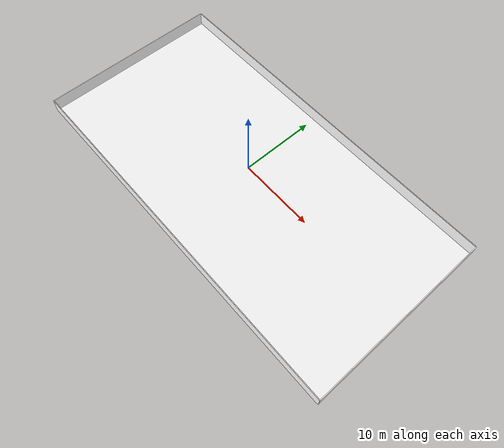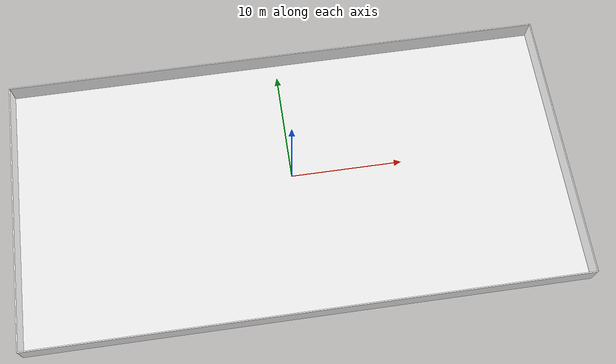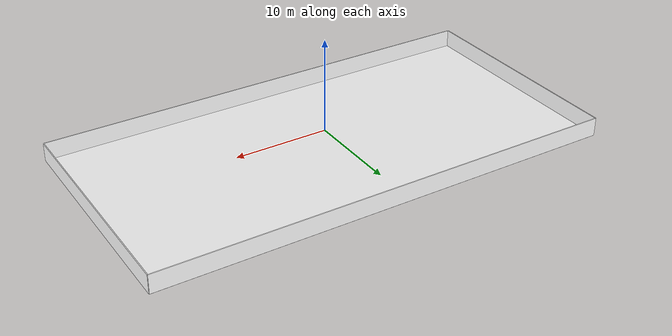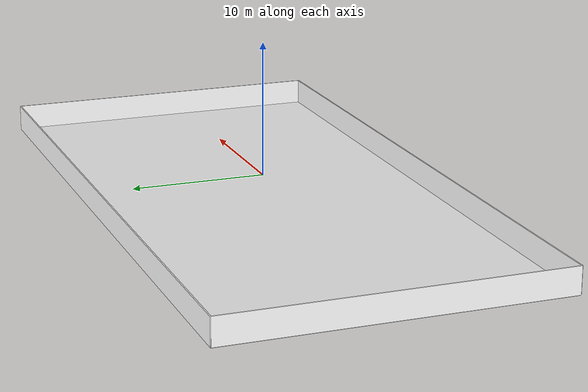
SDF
<sdf version="1.11">
 <world name="test_sea">
  <physics name="1ms" type="ode">
   <max_step_size>0.001</max_step_size>
   <real_time_factor>1.0</real_time_factor>
  </physics>
  <plugin filename="gz-sim-physics-system" name="gz::sim::systems::Physics"/>
  <plugin filename="gz-sim-user-commands-system" name="gz::sim::systems::UserCommands"/>
  <plugin filename="gz-sim-scene-broadcaster-system" name="gz::sim::systems::SceneBroadcaster"/>
  <plugin filename="gz-sim-buoyancy-system" name="gz::sim::systems::Buoyancy">
   <graded_buoyancy>
    <default_density>1000</default_density>
    <density_change><above_depth>0</above_depth><density>1</density></density_change>
   </graded_buoyancy>
  </plugin>
  <light type="directional" name="sun">
   <pose>0 0 10 0 0 0</pose>
   <diffuse>0.8 0.8 0.8 1</diffuse>
   <specular>0.2 0.2 0.2 1</specular>
   <attenuation>
    <range>1000</range>
    <constant>0.9</constant>
    <linear>0.01</linear>
    <quadratic>0.001</quadratic>
   </attenuation>
   <direction>-0.5 0.1 -0.9</direction>
  </light>
  <include><name>pool</name><uri>model://swimming_pool</uri></include>
  <model name="horizontal_plane">
   <static>true</static>
   <pose>0 0 -2.5 0 0 0</pose>
   <link name="link">
    <visual name="visual">
     <geometry><plane><normal>0 0 1</normal><size>300000 300000</size></plane></geometry>
     <transparency>1.0</transparency>
    </visual>
   </link>
  </model>
 </world>
</sdf>

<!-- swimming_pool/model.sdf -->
<sdf version="1.5">
  <model name="swimming_pool">
    <static>true</static>
    <link name="link">
      <visual name="ground">
        <cast_shadows>false</cast_shadows>
        <pose>0 0 -2 0 0 0</pose>
        <geometry>
          <box>
            <size>50 25 .1</size>
          </box>
        </geometry>
        <material>
          <ambient>1.0 1.0 1.0 1.0</ambient>
          <diffuse>1.0 1.0 1.0 1.0</diffuse>
          <pbr>
            <metal>
              <albedo_map>swimming_pool_tile.png</albedo_map>
              <roughness>0.1</roughness>
              <metalness>0.0</metalness>
            </metal>
          </pbr>
        </material>
      </visual>

      <collision name="ground">
        <pose>0 0 -2 0 0 0</pose>
        <geometry>
          <box>
            <size>50 25 .1</size>
          </box>
        </geometry>
      </collision>
      <collision name="north">
        <pose>25 0 -1 0 0 0</pose>
        <geometry>
          <box>
            <size>.1 25 2</size>
          </box>
        </geometry>
      </collision>
      <collision name="south">
        <pose>-25 0 -1 0 0 0</pose>
        <geometry>
          <box>
            <size>.1 25 2</size>
          </box>
        </geometry>
      </collision>
      <collision name="east">
        <pose>0 -12.5 -1 0 0 0</pose>
        <geometry>
          <box>
            <size>50 .1 2</size>
          </box>
        </geometry>
      </collision>
      <collision name="west">
        <pose>0 12.5 -1 0 0 0</pose>
        <geometry>
          <box>
            <size>50 .1 2</size>
          </box>
        </geometry>
      </collision>

      <visual name="north">
        <cast_shadows>false</cast_shadows>
        <pose>25 0 -1 0 0 0</pose>
        <geometry>
          <box>
            <size>.1 25 2</size>
          </box>
        </geometry>
        <material>
          <ambient>1.0 1.0 1.0 1.0</ambient>
          <diffuse>1.0 1.0 1.0 1.0</diffuse>
          <pbr>
            <metal>
              <albedo_map>swimming_pool_tile.png</albedo_map>
              <roughness>0.1</roughness>
              <metalness>0.0</metalness>
            </metal>
          </pbr>
        </material>
      </visual>

      <visual name="south">
        <cast_shadows>false</cast_shadows>
        <pose>-25 0 -1 0 0 0</pose>
        <geometry>
          <box>
            <size>.1 25 2</size>
          </box>
        </geometry>
        <material>
          <ambient>1.0 1.0 1.0 1.0</ambient>
          <diffuse>1.0 1.0 1.0 1.0</diffuse>
          <pbr>
            <metal>
              <albedo_map>swimming_pool_tile.png</albedo_map>
              <roughness>0.1</roughness>
              <metalness>0.0</metalness>
            </metal>
          </pbr>
        </material>
      </visual>

      <visual name="east">
        <cast_shadows>false</cast_shadows>
        <pose>0 -12.5 -1 0 0 0</pose>
        <geometry>
          <box>
            <size>50 .1 2</size>
          </box>
        </geometry>
        <material>
          <ambient>1.0 1.0 1.0 1.0</ambient>
          <diffuse>1.0 1.0 1.0 1.0</diffuse>
          <pbr>
            <metal>
              <albedo_map>swimming_pool_tile.png</albedo_map>
              <roughness>0.1</roughness>
              <metalness>0.0</metalness>
            </metal>
          </pbr>
        </material>
      </visual>

      <visual name="west">
        <cast_shadows>false</cast_shadows>
        <pose>0 12.5 -1 0 0 0</pose>
        <geometry>
          <box>
            <size>50 .1 2</size>
          </box>
        </geometry>
        <material>
          <ambient>1.0 1.0 1.0 1.0</ambient>
          <diffuse>1.0 1.0 1.0 1.0</diffuse>
          <pbr>
            <metal>
              <albedo_map>swimming_pool_tile.png</albedo_map>
              <roughness>0.1</roughness>
              <metalness>0.0</metalness>
            </metal>
          </pbr>
        </material>
      </visual>
    </link>
  </model>
</sdf>
